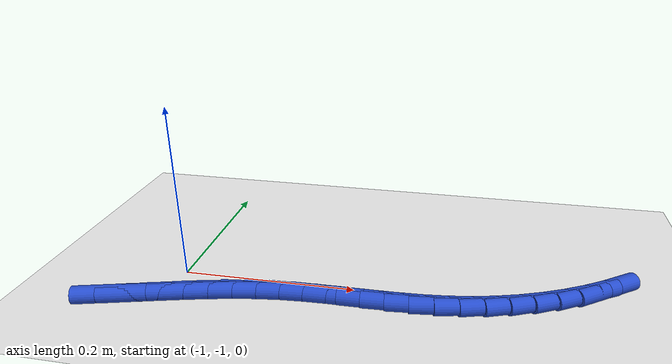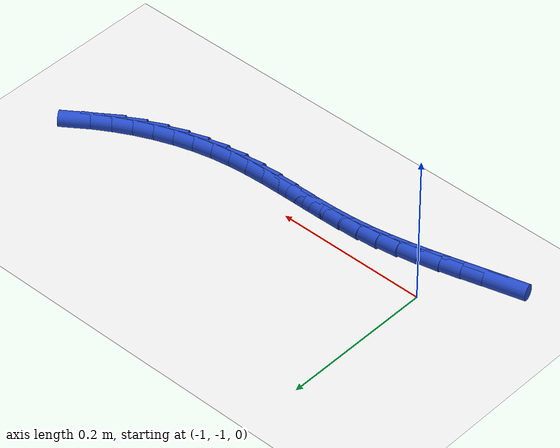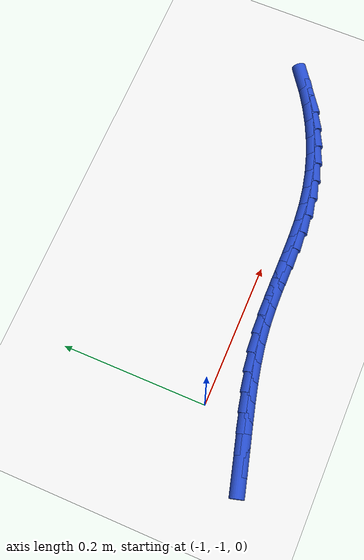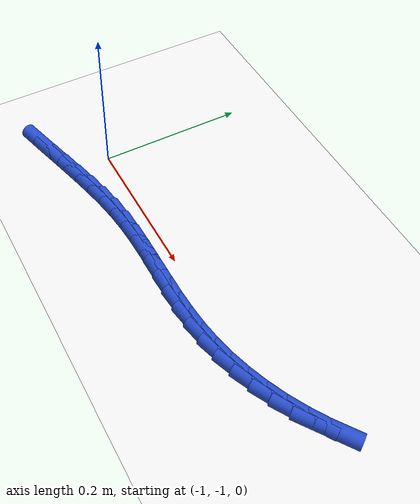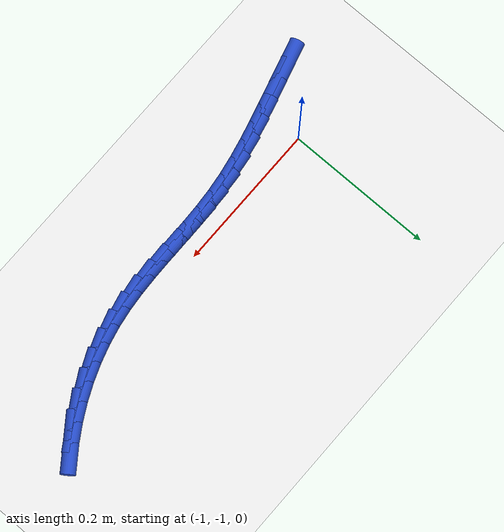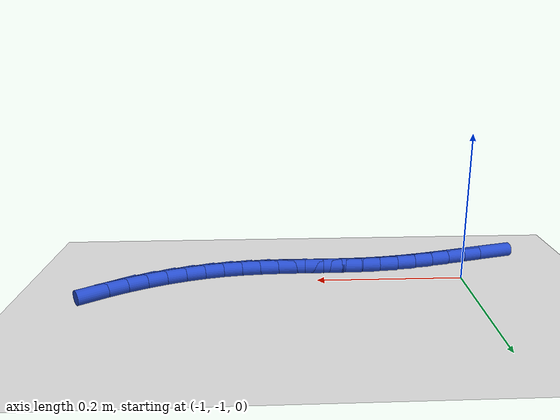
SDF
<sdf version="1.6">
 <world name="default">
  <model name="ground_plane">
   <static>1</static>
   <link name="link">
    <collision name="collision">
     <geometry><plane><normal>0 0 1</normal><size>100 100</size></plane></geometry>
     <surface><friction><ode><mu>100</mu><mu2>50</mu2></ode></friction></surface>
    </collision>
    <visual name="visual">
     <cast_shadows>0</cast_shadows>
     <geometry><plane><normal>0 0 1</normal><size>100 100</size></plane></geometry>
     <material>
      <script><uri>file://media/materials/scripts/gazebo.material</uri><name>Gazebo/WhiteGlow</name></script>
     </material>
    </visual>
   </link>
  </model>
  <model name="line">
   <link name="link_195">
    <pose>-1.054980370597743 -1.0709612786678928 0.01 0 1.57 0.2647811827581647</pose>
    <collision name="collision">
     <geometry><cylinder><radius>0.01</radius><length>0.08</length></cylinder></geometry>
    </collision>
    <visual name="visual">
     <material>
      <script><name>Gazebo/Blue</name><uri>file://media/materials/scripts/gazebo.material</uri></script>
     </material>
     <geometry><cylinder><radius>0.01</radius><length>0.08</length></cylinder></geometry>
    </visual>
   </link>
   <link name="link_196">
    <pose>-1.0295263380006434 -1.0640594779133634 0.01 0 1.57 0.2679914385490886</pose>
    <collision name="collision">
     <geometry><cylinder><radius>0.01</radius><length>0.08</length></cylinder></geometry>
    </collision>
    <visual name="visual">
     <material>
      <script><name>Gazebo/Blue</name><uri>file://media/materials/scripts/gazebo.material</uri></script>
     </material>
     <geometry><cylinder><radius>0.01</radius><length>0.08</length></cylinder></geometry>
    </visual>
   </link>
   <link name="link_197">
    <pose>-1.003970811987962 -1.0570420090022465 0.01 0 1.57 0.26061029906741384</pose>
    <collision name="collision">
     <geometry><cylinder><radius>0.01</radius><length>0.08</length></cylinder></geometry>
    </collision>
    <visual name="visual">
     <material>
      <script><name>Gazebo/Blue</name><uri>file://media/materials/scripts/gazebo.material</uri></script>
     </material>
     <geometry><cylinder><radius>0.01</radius><length>0.08</length></cylinder></geometry>
    </visual>
   </link>
   <link name="link_198">
    <pose>-0.9783339382570362 -1.0502052922056713 0.01 0 1.57 0.24259759836980072</pose>
    <collision name="collision">
     <geometry><cylinder><radius>0.01</radius><length>0.08</length></cylinder></geometry>
    </collision>
    <visual name="visual">
     <material>
      <script><name>Gazebo/Blue</name><uri>file://media/materials/scripts/gazebo.material</uri></script>
     </material>
     <geometry><cylinder><radius>0.01</radius><length>0.08</length></cylinder></geometry>
    </visual>
   </link>
   <link name="link_199">
    <pose>-0.952635862505202 -1.0438457477947671 0.01 0 1.57 0.21370778872826246</pose>
    <collision name="collision">
     <geometry><cylinder><radius>0.01</radius><length>0.08</length></cylinder></geometry>
    </collision>
    <visual name="visual">
     <material>
      <script><name>Gazebo/Blue</name><uri>file://media/materials/scripts/gazebo.material</uri></script>
     </material>
     <geometry><cylinder><radius>0.01</radius><length>0.08</length></cylinder></geometry>
    </visual>
   </link>
   <link name="link_200">
    <pose>-0.9268967304297957 -1.0382597960406648 0.01 0 1.57 0.17354439541550976</pose>
    <collision name="collision">
     <geometry><cylinder><radius>0.01</radius><length>0.08</length></cylinder></geometry>
    </collision>
    <visual name="visual">
     <material>
      <script><name>Gazebo/Blue</name><uri>file://media/materials/scripts/gazebo.material</uri></script>
     </material>
     <geometry><cylinder><radius>0.01</radius><length>0.08</length></cylinder></geometry>
    </visual>
   </link>
   <link name="link_201">
    <pose>-0.9011366877281533 -1.033743857214493 0.01 0 1.57 0.1218302102071585</pose>
    <collision name="collision">
     <geometry><cylinder><radius>0.01</radius><length>0.08</length></cylinder></geometry>
    </collision>
    <visual name="visual">
     <material>
      <script><name>Gazebo/Blue</name><uri>file://media/materials/scripts/gazebo.material</uri></script>
     </material>
     <geometry><cylinder><radius>0.01</radius><length>0.08</length></cylinder></geometry>
    </visual>
   </link>
   <link name="link_202">
    <pose>-0.8753758095227494 -1.0305897836604412 0.01 0 1.57 0.06867822793638069</pose>
    <collision name="collision">
     <geometry><cylinder><radius>0.01</radius><length>0.08</length></cylinder></geometry>
    </collision>
    <visual name="visual">
     <material>
      <script><name>Gazebo/Blue</name><uri>file://media/materials/scripts/gazebo.material</uri></script>
     </material>
     <geometry><cylinder><radius>0.01</radius><length>0.08</length></cylinder></geometry>
    </visual>
   </link>
   <link name="link_203">
    <pose>-0.8496299900415352 -1.0288188211600933 0.01 0 1.57 0.030473575746865482</pose>
    <collision name="collision">
     <geometry><cylinder><radius>0.01</radius><length>0.08</length></cylinder></geometry>
    </collision>
    <visual name="visual">
     <material>
      <script><name>Gazebo/Blue</name><uri>file://media/materials/scripts/gazebo.material</uri></script>
     </material>
     <geometry><cylinder><radius>0.01</radius><length>0.08</length></cylinder></geometry>
    </visual>
   </link>
   <link name="link_204">
    <pose>-0.8239086737578764 -1.0280347579611462 0.01 0 1.57 0.008916610480021679</pose>
    <collision name="collision">
     <geometry><cylinder><radius>0.01</radius><length>0.08</length></cylinder></geometry>
    </collision>
    <visual name="visual">
     <material>
      <script><name>Gazebo/Blue</name><uri>file://media/materials/scripts/gazebo.material</uri></script>
     </material>
     <geometry><cylinder><radius>0.01</radius><length>0.08</length></cylinder></geometry>
    </visual>
   </link>
   <link name="link_205">
    <pose>-0.7982207538923326 -1.0278057027152132 0.01 0 1.57 0.0041308416987365666</pose>
    <collision name="collision">
     <geometry><cylinder><radius>0.01</radius><length>0.08</length></cylinder></geometry>
    </collision>
    <visual name="visual">
     <material>
      <script><name>Gazebo/Blue</name><uri>file://media/materials/scripts/gazebo.material</uri></script>
     </material>
     <geometry><cylinder><radius>0.01</radius><length>0.08</length></cylinder></geometry>
    </visual>
   </link>
   <link name="link_206">
    <pose>-0.7725751236654599 -1.0276997640739072 0.01 0 1.57 0.01620183827818766</pose>
    <collision name="collision">
     <geometry><cylinder><radius>0.01</radius><length>0.08</length></cylinder></geometry>
    </collision>
    <visual name="visual">
     <material>
      <script><name>Gazebo/Blue</name><uri>file://media/materials/scripts/gazebo.material</uri></script>
     </material>
     <geometry><cylinder><radius>0.01</radius><length>0.08</length></cylinder></geometry>
    </visual>
   </link>
   <link name="link_207">
    <pose>-0.746980676297817 -1.0272850506888411 0.01 0 1.57 0.04521716748804388</pose>
    <collision name="collision">
     <geometry><cylinder><radius>0.01</radius><length>0.08</length></cylinder></geometry>
    </collision>
    <visual name="visual">
     <material>
      <script><name>Gazebo/Blue</name><uri>file://media/materials/scripts/gazebo.material</uri></script>
     </material>
     <geometry><cylinder><radius>0.01</radius><length>0.08</length></cylinder></geometry>
    </visual>
   </link>
   <link name="link_208">
    <pose>-0.7214463050099607 -1.0261296712116281 0.01 0 1.57 0.09116229620322158</pose>
    <collision name="collision">
     <geometry><cylinder><radius>0.01</radius><length>0.08</length></cylinder></geometry>
    </collision>
    <visual name="visual">
     <material>
      <script><name>Gazebo/Blue</name><uri>file://media/materials/scripts/gazebo.material</uri></script>
     </material>
     <geometry><cylinder><radius>0.01</radius><length>0.08</length></cylinder></geometry>
    </visual>
   </link>
   <link name="link_209">
    <pose>-0.695980903022449 -1.02380173429388 0.01 0 1.57 0.15347750545851202</pose>
    <collision name="collision">
     <geometry><cylinder><radius>0.01</radius><length>0.08</length></cylinder></geometry>
    </collision>
    <visual name="visual">
     <material>
      <script><name>Gazebo/Blue</name><uri>file://media/materials/scripts/gazebo.material</uri></script>
     </material>
     <geometry><cylinder><radius>0.01</radius><length>0.08</length></cylinder></geometry>
    </visual>
   </link>
   <link name="link_210">
    <pose>-0.6705948471947292 -1.0198746627339021 0.01 0 1.57 0.22377469267026598</pose>
    <collision name="collision">
     <geometry><cylinder><radius>0.01</radius><length>0.08</length></cylinder></geometry>
    </collision>
    <visual name="visual">
     <material>
      <script><name>Gazebo/Blue</name><uri>file://media/materials/scripts/gazebo.material</uri></script>
     </material>
     <geometry><cylinder><radius>0.01</radius><length>0.08</length></cylinder></geometry>
    </visual>
   </link>
   <link name="link_211">
    <pose>-0.6453568542214063 -1.0141308428750624 0.01 0 1.57 0.29225967079481885</pose>
    <collision name="collision">
     <geometry><cylinder><radius>0.01</radius><length>0.08</length></cylinder></geometry>
    </collision>
    <visual name="visual">
     <material>
      <script><name>Gazebo/Blue</name><uri>file://media/materials/scripts/gazebo.material</uri></script>
     </material>
     <geometry><cylinder><radius>0.01</radius><length>0.08</length></cylinder></geometry>
    </visual>
   </link>
   <link name="link_212">
    <pose>-0.620411812327249 -1.0066254947588853 0.01 0 1.57 0.3589497538776667</pose>
    <collision name="collision">
     <geometry><cylinder><radius>0.01</radius><length>0.08</length></cylinder></geometry>
    </collision>
    <visual name="visual">
     <material>
      <script><name>Gazebo/Blue</name><uri>file://media/materials/scripts/gazebo.material</uri></script>
     </material>
     <geometry><cylinder><radius>0.01</radius><length>0.08</length></cylinder></geometry>
    </visual>
   </link>
   <link name="link_213">
    <pose>-0.5959097394253577 -0.9974322121136946 0.01 0 1.57 0.4245407685518843</pose>
    <collision name="collision">
     <geometry><cylinder><radius>0.01</radius><length>0.08</length></cylinder></geometry>
    </collision>
    <visual name="visual">
     <material>
      <script><name>Gazebo/Blue</name><uri>file://media/materials/scripts/gazebo.material</uri></script>
     </material>
     <geometry><cylinder><radius>0.01</radius><length>0.08</length></cylinder></geometry>
    </visual>
   </link>
   <link name="link_214">
    <pose>-0.5720006534288355 -0.9866245886678139 0.01 0 1.57 0.4897263231415994</pose>
    <collision name="collision">
     <geometry><cylinder><radius>0.01</radius><length>0.08</length></cylinder></geometry>
    </collision>
    <visual name="visual">
     <material>
      <script><name>Gazebo/Blue</name><uri>file://media/materials/scripts/gazebo.material</uri></script>
     </material>
     <geometry><cylinder><radius>0.01</radius><length>0.08</length></cylinder></geometry>
    </visual>
   </link>
   <link name="link_215">
    <pose>-0.5488345722507828 -0.9742762181495663 0.01 0 1.57 0.5551976693391227</pose>
    <collision name="collision">
     <geometry><cylinder><radius>0.01</radius><length>0.08</length></cylinder></geometry>
    </collision>
    <visual name="visual">
     <material>
      <script><name>Gazebo/Blue</name><uri>file://media/materials/scripts/gazebo.material</uri></script>
     </material>
     <geometry><cylinder><radius>0.01</radius><length>0.08</length></cylinder></geometry>
    </visual>
   </link>
   <link name="link_216">
    <pose>-0.5265615138043009 -0.9604606942872753 0.01 0 1.57 0.6216449340129345</pose>
    <collision name="collision">
     <geometry><cylinder><radius>0.01</radius><length>0.08</length></cylinder></geometry>
    </collision>
    <visual name="visual">
     <material>
      <script><name>Gazebo/Blue</name><uri>file://media/materials/scripts/gazebo.material</uri></script>
     </material>
     <geometry><cylinder><radius>0.01</radius><length>0.08</length></cylinder></geometry>
    </visual>
   </link>
  </model>
 </world>
</sdf>
